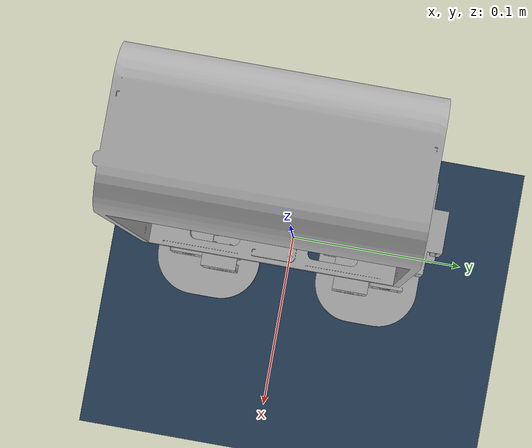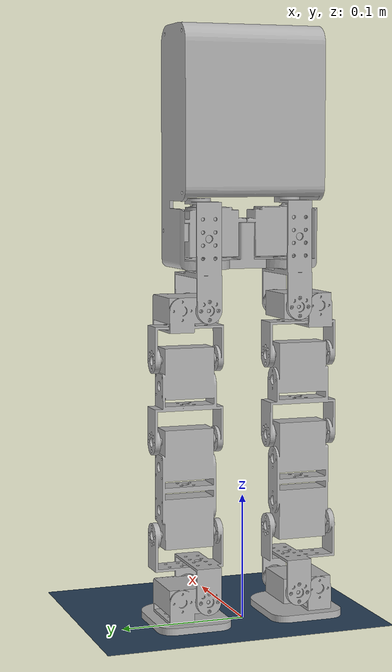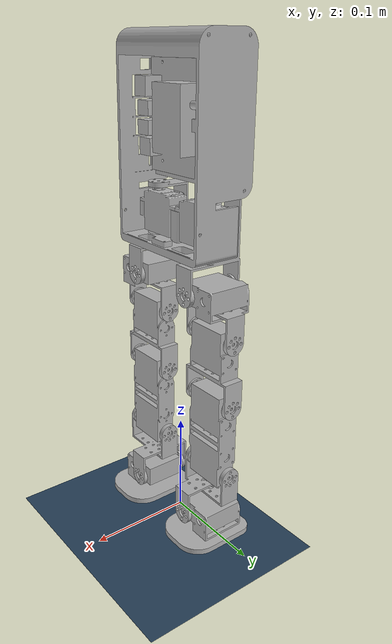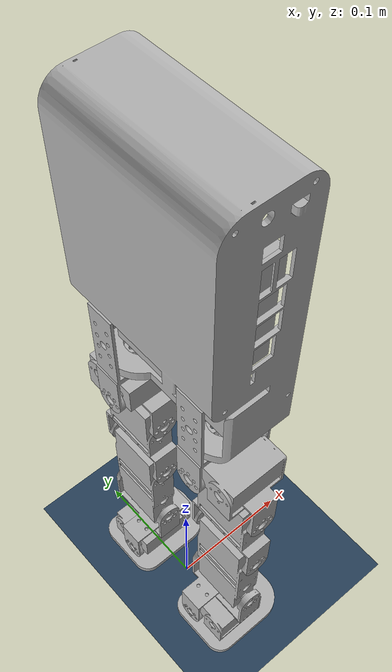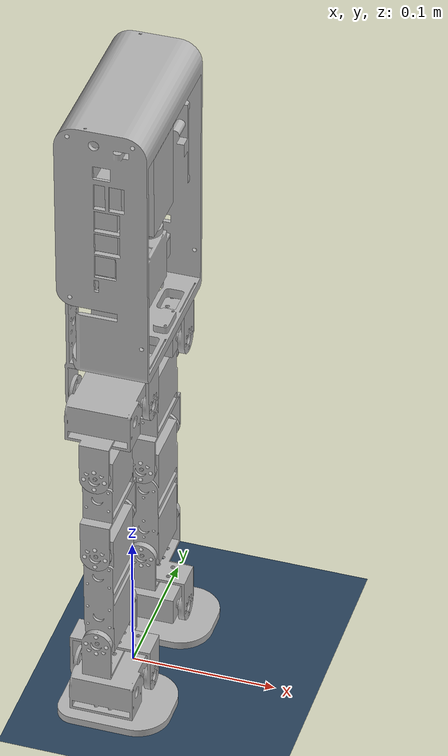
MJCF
<mujoco model="Robot">
    <compiler angle="radian"/>
    <option timestep="0.01"/>
    <asset>
        <texture type="skybox" builtin="none" file="../textures/skybox.png" gridsize = "3 4" gridlayout = ".U..LFRB.D.." rgb1=".2 .62 .9" rgb2="0 0 0"/>
        <material name="robot_texture" rgba="0.700 0.700 0.700 1.000"/>
        <material name="red_translucent" rgba="1 0 0 0.5"/>
        <texture name="grid" type="2d" builtin="checker" width="512" height="512" rgb1=".1 .2 .3" rgb2=".2 .3 .4"/>
        <material name="grid" texture="grid" texrepeat="1 1" texuniform="true" reflectance=".2"/>

        <mesh name="base_link" file="../meshes/base_link.stl" scale="0.001 0.001 0.001"/>
        <mesh name="r_upper_hip" file="../meshes/r_upper_hip.stl" scale="0.001 0.001 0.001"/>
        <mesh name="r_hip" file="../meshes/r_hip.stl" scale="0.001 0.001 0.001"/>
        <mesh name="r_upper_leg" file="../meshes/r_upper_leg.stl" scale="0.001 0.001 0.001"/>
        <mesh name="r_lower_leg" file="../meshes/r_lower_leg.stl" scale="0.001 0.001 0.001"/>
        <mesh name="r_ankle" file="../meshes/r_ankle.stl" scale="0.001 0.001 0.001"/>
        <mesh name="r_foot" file="../meshes/r_foot.stl" scale="0.001 0.001 0.001"/>
        <mesh name="l_upper_hip" file="../meshes/l_upper_hip.stl" scale="0.001 0.001 0.001"/>
        <mesh name="l_lower_hip" file="../meshes/l_lower_hip.stl" scale="0.001 0.001 0.001"/>
        <mesh name="l_upper_leg" file="../meshes/l_upper_leg.stl" scale="0.001 0.001 0.001"/>
        <mesh name="l_lower_leg" file="../meshes/l_lower_leg.stl" scale="0.001 0.001 0.001"/>
        <mesh name="l_ankle" file="../meshes/l_ankle.stl" scale="0.001 0.001 0.001"/>
        <mesh name="l_foot" file="../meshes/l_foot.stl" scale="0.001 0.001 0.001"/>
        <mesh name="l_hip_motor" file="../meshes/l_hip_motor.stl" scale="0.001 0.001 0.001"/>
        <mesh name="r_hip_motor" file="../meshes/r_hip_motor.stl" scale="0.001 0.001 0.001"/>
        <mesh name="board_simplified_1" file="../meshes/board_simplified_1.stl" scale="0.001 0.001 0.001"/>
    </asset>

    <default>
        <geom type="mesh" solref=".004 1"/>
        <joint damping="1.084" armature="0.045" frictionloss="0.03" actuatorfrcrange="-100 100"/>
        <position kp="21.1" ctrlrange="-3.141592 3.141592" forcerange="-5 5"/>
        <default class="visual">
            <geom material="robot_texture"/>
        </default>
    </default>

    <worldbody>
        <geom name="floor" size="0 0 .05" type="plane" material="grid" condim="3" pos="0 0 0"/>
        <light name="spotlight" mode="targetbodycom" target="torso" diffuse=".8 .8 .8" specular="0.3 0.3 0.3" pos="0 -6 4" cutoff="30"/>

        <!-- Add the visual target -->

        <!-- The meshes are placed so that the robot is already built, but the origin is in the floor -->
        <!-- We need to displace the free joint so that we get position measurments from the torso -->
        <body name="root" pos="0.022936 0 0.29416"> <!-- Render the body at the correct position -->
            <joint armature="0" damping="0" limited="false" name="root" pos="0 0 0" stiffness="0" type="free"/>
            <body name="torso" pos="-0.022936 0 -0.29416"> <!-- Render the body at the correct position -->
                <inertial pos="-0.0050405 0.0017075 0.3776479" mass="0.1994868" diaginertia="0.001079 0.000819 0.000384"/>
                <light name="top" pos="0 0 2" mode="trackcom"/>
                <camera name="back" pos="-3 0 1" xyaxes="0 -1 0 1 0 2" mode="trackcom"/>
                <camera name="side" pos="0 -3 1" xyaxes="1 0 0 0 1 2" mode="trackcom"/>
                <geom name="torso" type="mesh" mesh="base_link" class="visual"/>

                <!-- The following geoms is used to take as reference for the position of the robot -->
                <geom name="reference_point" size=".01" type="sphere" pos="0 0 0.3" rgba="1 0 0 0" contype="0" conaffinity="0"/>

                <geom type="mesh" mesh="l_hip_motor" class="visual"/>
                <geom type="mesh" mesh="r_hip_motor" class="visual"/>
                <geom type="mesh" mesh="board_simplified_1" class="visual"/>
                <body name="l_upper_hip" pos="-0.0005 0.037352 0.334234">
                    <inertial pos="-0.00694059 -9.1299e-08 -0.0485837" mass="0.0295176" diaginertia="3.8e-05 2.80623e-05 1.19377e-05"/>
                    <joint name="r_hip_z" pos="0 0 0" axis="0 0 1" range="-1.5708 0.698132"/>
                    <geom pos="0.0005 -0.037352 -0.334234" quat="1 0 0 0" type="mesh" mesh="l_upper_hip" class="visual"/>
                    <body name="l_lower_hip" pos="0.0235 0 -0.083">
                        <inertial pos="-0.0234498 0.0107536 -0.00459196" mass="0.111904" diaginertia="3.7e-05 3.61926e-05 3.08074e-05"/>
                        <joint name="r_hip_y" pos="0 0 0" axis="1 0 0" range="-1.5708 0.785398"/>
                        <geom pos="-0.023 -0.037352 -0.251234" quat="1 0 0 0" type="mesh" mesh="l_lower_hip" class="visual"/>
                        <body name="l_upper_leg" pos="-0.023477 -0.013383 -0.039959">
                        <inertial pos="5.1192e-06 0.0236078 -0.0172742" mass="0.111651" diaginertia="6.2e-05 4.2e-05 2.7e-05"/>
                        <joint name="r_hip_x" pos="0 0 0" axis="0 1 0" range="-2.00713 2.00713"/>
                        <geom pos="0.000477 -0.023969 -0.211275" type="mesh" mesh="l_upper_leg" class="visual"/>
                        <body name="l_lower_leg" pos="1.5e-05 0.000432 -0.063998">
                            <inertial pos="3.84448e-06 0.0235546 -0.0371166" mass="0.192145" diaginertia="0.000184 0.000161 3.6e-05"/>
                            <joint name="r_knee" pos="0 0 0" axis="0 1 0" range="0 2.35619"/>
                            <geom pos="0.000462 -0.024401 -0.147277" type="mesh" mesh="l_lower_leg" class="visual"/>
                            <body name="l_ankle" pos="0 -0.0015 -0.074233">
                            <inertial pos="7.31829e-08 0.0200002 -0.0250003" mass="0.0316626" diaginertia="2.05616e-05 1.9e-05 1.64384e-05"/>
                            <joint name="r_ankle_y" pos="0 0 0" axis="0 1 0" range="-1.91986 1.91986"/>
                            <geom pos="0.000462 -0.022901 -0.073044" quat="1 0 0 0" type="mesh" mesh="l_ankle" class="visual"/>
                            <body name="l_foot" pos="0.0235 0.015 -0.05">
                                <inertial pos="-0.0213185 0.0101746 -0.00821998" mass="0.157381" diaginertia="7.26491e-05 6e-05 4.73509e-05"/>
                                <joint name="r_ankle_x" pos="0 0 0" axis="1 0 0" range="-1.5708 0.436332"/>
                                <geom name="l_foot" pos="-0.023038 -0.037901 -0.023044" quat="1 0 0 0" type="mesh" mesh="l_foot" class="visual"/>
                            </body>
                            </body>
                        </body>
                        </body>
                    </body>
                </body>
                <body name="r_upper_hip" pos="-0.0006 -0.037165 0.335135">
                    <inertial pos="-0.00694083 3.3037e-07 -0.0485836" mass="0.0295176" diaginertia="3.8e-05 2.80623e-05 1.19377e-05"/>
                    <joint name="l_hip_z" pos="0 0 0" axis="0 0 1" range="-0.698132 1.5708"/>
                    <geom pos="0.0006 0.037165 -0.335135" quat="1 0 0 0" type="mesh" mesh="r_upper_hip" class="visual"/>
                    <body name="r_hip" pos="0.0235 0 -0.083">
                        <inertial pos="-0.0234501 -0.0107534 -0.00459179" mass="0.111904" diaginertia="3.7e-05 3.61926e-05 3.08074e-05"/>
                        <joint name="l_hip_y" pos="0 0 0" axis="1 0 0" range="-0.785398 1.5708"/>
                        <geom pos="-0.0229 0.037165 -0.252135" quat="1 0 0 0" type="mesh" mesh="r_hip" class="visual"/>
                        <body name="r_upper_leg" pos="-0.023477 0.013384 -0.039959">
                        <inertial pos="4.88398e-06 -0.0236086 -0.017274" mass="0.111651" diaginertia="6.2e-05 4.2e-05 2.7e-05"/>
                        <joint name="l_hip_x" pos="0 0 0" axis="0 1 0" range="-2.00713 2.00713"/>
                        <geom pos="0.000577 0.023781 -0.212176" type="mesh" mesh="r_upper_leg" class="visual"/>
                        <body name="r_lower_leg" pos="1.5e-05 -0.000433 -0.063998">
                            <inertial pos="3.60925e-06 -0.0235544 -0.0371164" mass="0.192145" diaginertia="0.000184 0.000161 3.6e-05"/>
                            <joint name="l_knee" pos="0 0 0" axis="0 1 0" range="0 2.35619"/>
                            <geom pos="0.000562 0.024214 -0.148178" type="mesh" mesh="r_lower_leg" class="visual"/>
                            <body name="r_ankle" pos="0 0.0015 -0.074233">
                            <inertial pos="-1.6372e-07 -0.0199999 -0.0250001" mass="0.0316626" diaginertia="2.05616e-05 1.9e-05 1.64384e-05"/>
                            <joint name="l_ankle_y" pos="0 0 0" axis="0 1 0" range="-1.91986 1.91986"/>
                            <geom pos="0.000562 0.022714 -0.073945" quat="1 0 0 0" type="mesh" mesh="r_ankle" class="visual"/>
                            <body name="r_foot" pos="0.0235 -0.015 -0.05">
                                <inertial pos="-0.0213188 -0.0100895 -0.00821981" mass="0.157381" diaginertia="7.27257e-05 5.99255e-05 4.73489e-05"/>
                                <joint name="l_ankle_x" pos="0 0 0" axis="1 0 0" range="-0.436332 1.5708"/>
                                <geom name="r_foot" pos="-0.022938 0.037714 -0.023945" quat="1 0 0 0" type="mesh" mesh="r_foot" class="visual"/>
                            </body>
                            </body>
                            </body>
                        </body>
                    </body>
                </body>
            </body>
        </body>

    </worldbody>

    <actuator>
        <position name="r_hip_z"     joint="r_hip_z"  />
        <position name="r_hip_x"     joint="r_hip_x"  />
        <position name="r_hip_y"     joint="r_hip_y"  />
        <position name="r_knee"      joint="r_knee"   />
        <position name="r_ankle_y"   joint="r_ankle_y"/>
        <position name="r_ankle_x"   joint="r_ankle_x"/>
        <position name="l_hip_z"     joint="l_hip_z"  />
        <position name="l_hip_x"     joint="l_hip_x"  />
        <position name="l_hip_y"     joint="l_hip_y"  />
        <position name="l_knee"      joint="l_knee"   />
        <position name="l_ankle_y"   joint="l_ankle_y"/>
        <position name="l_ankle_x"   joint="l_ankle_x"/>
    </actuator>

</mujoco>
